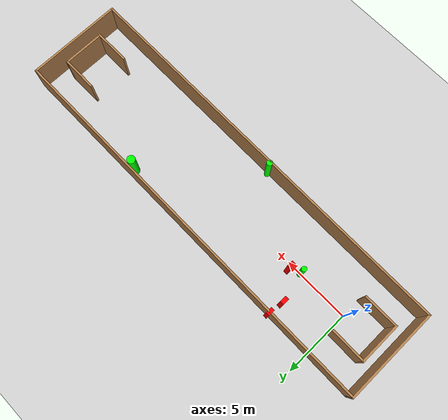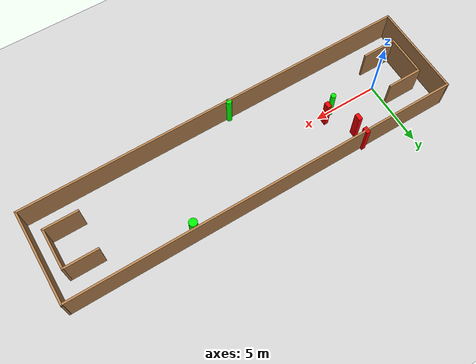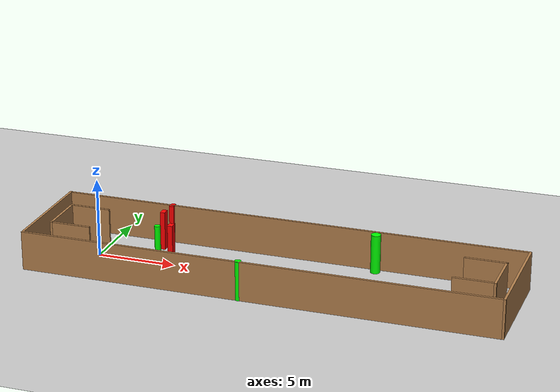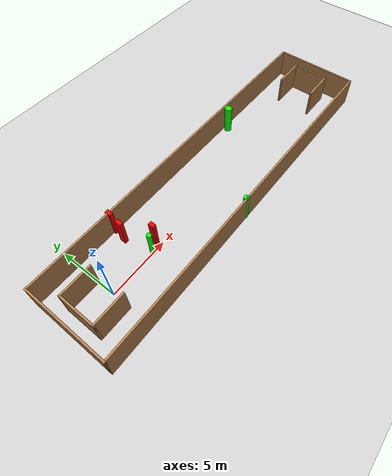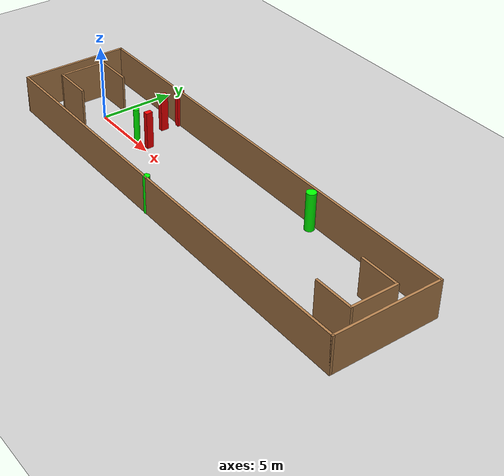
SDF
<sdf version="1.7">
 <world name="default">
  <light name="sun" type="directional">
   <pose>0 0 10 0 -0 0</pose>
   <diffuse>0.8 0.8 0.8 1</diffuse>
   <specular>0.2 0.2 0.2 1</specular>
   <attenuation>
    <range>1000</range>
    <constant>0.9</constant>
    <linear>0.01</linear>
    <quadratic>0.001</quadratic>
   </attenuation>
   <direction>-0.5 0.1 -0.9</direction>
   <spot><inner_angle>0</inner_angle><outer_angle>0</outer_angle><falloff>0</falloff></spot>
  </light>
  <model name="ground_plane">
   <static>1</static>
   <link name="link">
    <collision name="collision">
     <geometry><plane><normal>0 0 1</normal><size>100 100</size></plane></geometry>
     <surface>
      <contact><collide_bitmask>65535</collide_bitmask></contact>
      <friction><ode><mu>100</mu><mu2>50</mu2></ode></friction>
     </surface>
    </collision>
    <visual name="visual">
     <cast_shadows>0</cast_shadows>
     <geometry><plane><normal>0 0 1</normal><size>100 100</size></plane></geometry>
     <material>
      <script><uri>file://media/materials/scripts/gazebo.material</uri><name>Gazebo/Grey</name></script>
     </material>
    </visual>
   </link>
  </model>
  <gravity>0 0 -9.8</gravity>
  <magnetic_field>6e-06 2.3e-05 -4.2e-05</magnetic_field>
  <atmosphere type="adiabatic"/>
  <physics type="ode">
   <max_step_size>0.001</max_step_size>
   <real_time_factor>1</real_time_factor>
   <real_time_update_rate>1000</real_time_update_rate>
  </physics>
  <scene><ambient>0.4 0.4 0.4 1</ambient><background>0.7 0.7 0.7 1</background><shadows>1</shadows></scene>
  <spherical_coordinates>
   <surface_model>EARTH_WGS84</surface_model>
   <latitude_deg>0</latitude_deg>
   <longitude_deg>0</longitude_deg>
   <elevation>0</elevation>
   <heading_deg>0</heading_deg>
  </spherical_coordinates>
  <model name="my_base_walls">
   <link name="Wall_0">
    <collision name="Wall_0_Collision">
     <geometry><box><size>7.15 0.15 2.5</size></box></geometry>
     <pose>0 0 1.25 0 -0 0</pose>
    </collision>
    <visual name="Wall_0_Visual">
     <pose>0 0 1.25 0 -0 0</pose>
     <geometry><box><size>7.15 0.15 2.5</size></box></geometry>
     <material>
      <script><uri>file://media/materials/scripts/gazebo.material</uri><name>Gazebo/Wood</name></script>
      <ambient>1 1 1 1</ambient>
     </material>
     <meta><layer>0</layer></meta>
    </visual>
    <pose>-15 0 0 0 -0 1.5708</pose>
   </link>
   <link name="Wall_10">
    <collision name="Wall_10_Collision">
     <geometry><box><size>2.65 0.15 2.5</size></box></geometry>
     <pose>0 0 1.25 0 -0 0</pose>
    </collision>
    <visual name="Wall_10_Visual">
     <pose>0 0 1.25 0 -0 0</pose>
     <geometry><box><size>2.65 0.15 2.5</size></box></geometry>
     <material>
      <script><uri>file://media/materials/scripts/gazebo.material</uri><name>Gazebo/Wood</name></script>
      <ambient>1 1 1 1</ambient>
     </material>
     <meta><layer>0</layer></meta>
    </visual>
    <pose>-12.75 -1.5 0 0 -0 0</pose>
   </link>
   <link name="Wall_12">
    <collision name="Wall_12_Collision">
     <geometry><box><size>2.65 0.15 2.5</size></box></geometry>
     <pose>0 0 1.25 0 -0 0</pose>
    </collision>
    <visual name="Wall_12_Visual">
     <pose>0 0 1.25 0 -0 0</pose>
     <geometry><box><size>2.65 0.15 2.5</size></box></geometry>
     <material>
      <script><uri>file://media/materials/scripts/gazebo.material</uri><name>Gazebo/Wood</name></script>
      <ambient>1 1 1 1</ambient>
     </material>
     <meta><layer>0</layer></meta>
    </visual>
    <pose>-12.75 1.5 0 0 -0 0</pose>
   </link>
   <link name="Wall_14">
    <collision name="Wall_14_Collision">
     <geometry><box><size>3.15 0.15 2.5</size></box></geometry>
     <pose>0 0 1.25 0 -0 0</pose>
    </collision>
    <visual name="Wall_14_Visual">
     <pose>0 0 1.25 0 -0 0</pose>
     <geometry><box><size>3.15 0.15 2.5</size></box></geometry>
     <material>
      <script><uri>file://media/materials/scripts/gazebo.material</uri><name>Gazebo/Wood</name></script>
      <ambient>1 1 1 1</ambient>
     </material>
     <meta><layer>0</layer></meta>
    </visual>
    <pose>14 0 0 0 -0 -1.5708</pose>
   </link>
   <link name="Wall_15">
    <collision name="Wall_15_Collision">
     <geometry><box><size>2.65 0.15 2.5</size></box></geometry>
     <pose>0 0 1.25 0 -0 0</pose>
    </collision>
    <visual name="Wall_15_Visual">
     <pose>0 0 1.25 0 -0 0</pose>
     <geometry><box><size>2.65 0.15 2.5</size></box></geometry>
     <material>
      <script><uri>file://media/materials/scripts/gazebo.material</uri><name>Gazebo/Wood</name></script>
      <ambient>1 1 1 1</ambient>
     </material>
     <meta><layer>0</layer></meta>
    </visual>
    <pose>12.75 -1.5 0 0 -0 3.14159</pose>
   </link>
   <link name="Wall_17">
    <collision name="Wall_17_Collision">
     <geometry><box><size>2.65 0.15 2.5</size></box></geometry>
     <pose>0 0 1.25 0 -0 0</pose>
    </collision>
    <visual name="Wall_17_Visual">
     <pose>0 0 1.25 0 -0 0</pose>
     <geometry><box><size>2.65 0.15 2.5</size></box></geometry>
     <material>
      <script><uri>file://media/materials/scripts/gazebo.material</uri><name>Gazebo/Wood</name></script>
      <ambient>1 1 1 1</ambient>
     </material>
     <meta><layer>0</layer></meta>
    </visual>
    <pose>12.75 1.5 0 0 -0 3.14159</pose>
   </link>
   <link name="Wall_2">
    <collision name="Wall_2_Collision">
     <geometry><box><size>30.15 0.15 2.5</size></box></geometry>
     <pose>0 0 1.25 0 -0 0</pose>
    </collision>
    <visual name="Wall_2_Visual">
     <pose>0 0 1.25 0 -0 0</pose>
     <geometry><box><size>30.15 0.15 2.5</size></box></geometry>
     <material>
      <script><uri>file://media/materials/scripts/gazebo.material</uri><name>Gazebo/Wood</name></script>
      <ambient>1 1 1 1</ambient>
     </material>
     <meta><layer>0</layer></meta>
    </visual>
    <pose>-0 -3.5 0 0 -0 0</pose>
   </link>
   <link name="Wall_4">
    <collision name="Wall_4_Collision">
     <geometry><box><size>30.15 0.15 2.5</size></box></geometry>
     <pose>0 0 1.25 0 -0 0</pose>
    </collision>
    <visual name="Wall_4_Visual">
     <pose>0 0 1.25 0 -0 0</pose>
     <geometry><box><size>30.15 0.15 2.5</size></box></geometry>
     <material>
      <script><uri>file://media/materials/scripts/gazebo.material</uri><name>Gazebo/Wood</name></script>
      <ambient>1 1 1 1</ambient>
     </material>
     <meta><layer>0</layer></meta>
    </visual>
    <pose>-0 3.5 0 0 -0 0</pose>
   </link>
   <link name="Wall_6">
    <collision name="Wall_6_Collision">
     <geometry><box><size>7.15 0.15 2.5</size></box></geometry>
     <pose>0 0 1.25 0 -0 0</pose>
    </collision>
    <visual name="Wall_6_Visual">
     <pose>0 0 1.25 0 -0 0</pose>
     <geometry><box><size>7.15 0.15 2.5</size></box></geometry>
     <material>
      <script><uri>file://media/materials/scripts/gazebo.material</uri><name>Gazebo/Wood</name></script>
      <ambient>1 1 1 1</ambient>
     </material>
     <meta><layer>0</layer></meta>
    </visual>
    <pose>15 0 0 0 -0 -1.5708</pose>
   </link>
   <link name="Wall_9">
    <collision name="Wall_9_Collision">
     <geometry><box><size>3.15 0.15 2.5</size></box></geometry>
     <pose>0 0 1.25 0 -0 0</pose>
    </collision>
    <visual name="Wall_9_Visual">
     <pose>0 0 1.25 0 -0 0</pose>
     <geometry><box><size>3.15 0.15 2.5</size></box></geometry>
     <material>
      <script><uri>file://media/materials/scripts/gazebo.material</uri><name>Gazebo/Wood</name></script>
      <ambient>1 1 1 1</ambient>
     </material>
     <meta><layer>0</layer></meta>
    </visual>
    <pose>-14 0 0 0 -0 -1.5708</pose>
   </link>
   <static>1</static>
   <pose>11.5 0 0 0 -0 0</pose>
  </model>
  <model name="cylinder1">
   <static>1</static>
   <link name="link">
    <inertial>
     <mass>1</mass>
     <inertia><ixx>0.5</ixx><ixy>0</ixy><ixz>0</ixz><iyy>0.5</iyy><iyz>0</iyz><izz>1</izz></inertia>
    </inertial>
    <collision name="collision">
     <geometry><cylinder><radius>0.2140664703525032</radius><length>2.5</length></cylinder></geometry>
    </collision>
    <visual name="visual">
     <geometry><cylinder><radius>0.2140664703525032</radius><length>2.5</length></cylinder></geometry>
     <material>
      <ambient>0 1 0 1</ambient>
      <diffuse>0 1 0 1</diffuse>
      <specular>0.1 0.1 0.1 1</specular>
      <emissive>0 0 0 0</emissive>
     </material>
    </visual>
   </link>
   <pose>10.459340435334294 -3.399930114743792 1.25 0 0 0</pose>
  </model>
  <model name="cylinder2">
   <static>1</static>
   <link name="link">
    <inertial>
     <mass>1</mass>
     <inertia><ixx>0.5</ixx><ixy>0</ixy><ixz>0</ixz><iyy>0.5</iyy><iyz>0</iyz><izz>1</izz></inertia>
    </inertial>
    <collision name="collision">
     <geometry><cylinder><radius>0.18837815160124816</radius><length>2.5</length></cylinder></geometry>
    </collision>
    <visual name="visual">
     <geometry><cylinder><radius>0.18837815160124816</radius><length>2.5</length></cylinder></geometry>
     <material>
      <ambient>0 1 0 1</ambient>
      <diffuse>0 1 0 1</diffuse>
      <specular>0.1 0.1 0.1 1</specular>
      <emissive>0 0 0 0</emissive>
     </material>
    </visual>
   </link>
   <pose>3.9343552879649692 0.042678542608018954 1.25 0 0 0</pose>
  </model>
  <model name="cylinder3">
   <static>1</static>
   <link name="link">
    <inertial>
     <mass>1</mass>
     <inertia><ixx>0.5</ixx><ixy>0</ixy><ixz>0</ixz><iyy>0.5</iyy><iyz>0</iyz><izz>1</izz></inertia>
    </inertial>
    <collision name="collision">
     <geometry><cylinder><radius>0.3049956178648504</radius><length>2.5</length></cylinder></geometry>
    </collision>
    <visual name="visual">
     <geometry><cylinder><radius>0.3049956178648504</radius><length>2.5</length></cylinder></geometry>
     <material>
      <ambient>0 1 0 1</ambient>
      <diffuse>0 1 0 1</diffuse>
      <specular>0.1 0.1 0.1 1</specular>
      <emissive>0 0 0 0</emissive>
     </material>
    </visual>
   </link>
   <pose>17.047803297079295 3.093100406648464 1.25 0 0 0</pose>
  </model>
  <model name="box1">
   <static>1</static>
   <link name="link">
    <inertial>
     <mass>1</mass>
     <inertia><ixx>0.083</ixx><ixy>0</ixy><ixz>0</ixz><iyy>0.083</iyy><iyz>0</iyz><izz>0.083</izz></inertia>
    </inertial>
    <collision name="collision">
     <geometry><box><size>0.3139803518099318 0.4542738895738518 2.5</size></box></geometry>
    </collision>
    <visual name="visual">
     <geometry><box><size>0.3139803518099318 0.4542738895738518 2.5</size></box></geometry>
     <material>
      <ambient>1 0 0 1</ambient>
      <diffuse>1 0 0 1</diffuse>
      <specular>0.1 0.1 0.1 1</specular>
      <emissive>0 0 0 0</emissive>
     </material>
    </visual>
    <sensor name="my_contact" type="contact">
     <contact><collision>box_collision</collision><topic>__default_topic__</topic></contact>
    </sensor>
   </link>
   <pose>4.674173840173545 0.44543436915209966 1.25 0 0 0</pose>
  </model>
  <model name="box2">
   <static>1</static>
   <link name="link">
    <inertial>
     <mass>1</mass>
     <inertia><ixx>0.083</ixx><ixy>0</ixy><ixz>0</ixz><iyy>0.083</iyy><iyz>0</iyz><izz>0.083</izz></inertia>
    </inertial>
    <collision name="collision">
     <geometry><box><size>0.3002829489654139 0.49140222420238977 2.5</size></box></geometry>
    </collision>
    <visual name="visual">
     <geometry><box><size>0.3002829489654139 0.49140222420238977 2.5</size></box></geometry>
     <material>
      <ambient>1 0 0 1</ambient>
      <diffuse>1 0 0 1</diffuse>
      <specular>0.1 0.1 0.1 1</specular>
      <emissive>0 0 0 0</emissive>
     </material>
    </visual>
    <sensor name="my_contact" type="contact">
     <contact><collision>box_collision</collision><topic>__default_topic__</topic></contact>
    </sensor>
   </link>
   <pose>3.561082489187367 3.4941116869538007 1.25 0 0 0</pose>
  </model>
  <model name="box3">
   <static>1</static>
   <link name="link">
    <inertial>
     <mass>1</mass>
     <inertia><ixx>0.083</ixx><ixy>0</ixy><ixz>0</ixz><iyy>0.083</iyy><iyz>0</iyz><izz>0.083</izz></inertia>
    </inertial>
    <collision name="collision">
     <geometry><box><size>0.31033299690576494 0.5076579870580958 2.5</size></box></geometry>
    </collision>
    <visual name="visual">
     <geometry><box><size>0.31033299690576494 0.5076579870580958 2.5</size></box></geometry>
     <material>
      <ambient>1 0 0 1</ambient>
      <diffuse>1 0 0 1</diffuse>
      <specular>0.1 0.1 0.1 1</specular>
      <emissive>0 0 0 0</emissive>
     </material>
    </visual>
    <sensor name="my_contact" type="contact">
     <contact><collision>box_collision</collision><topic>__default_topic__</topic></contact>
    </sensor>
   </link>
   <pose>3.4135673913782476 2.3558970173764076 1.25 0 0 0</pose>
  </model>
 </world>
</sdf>
